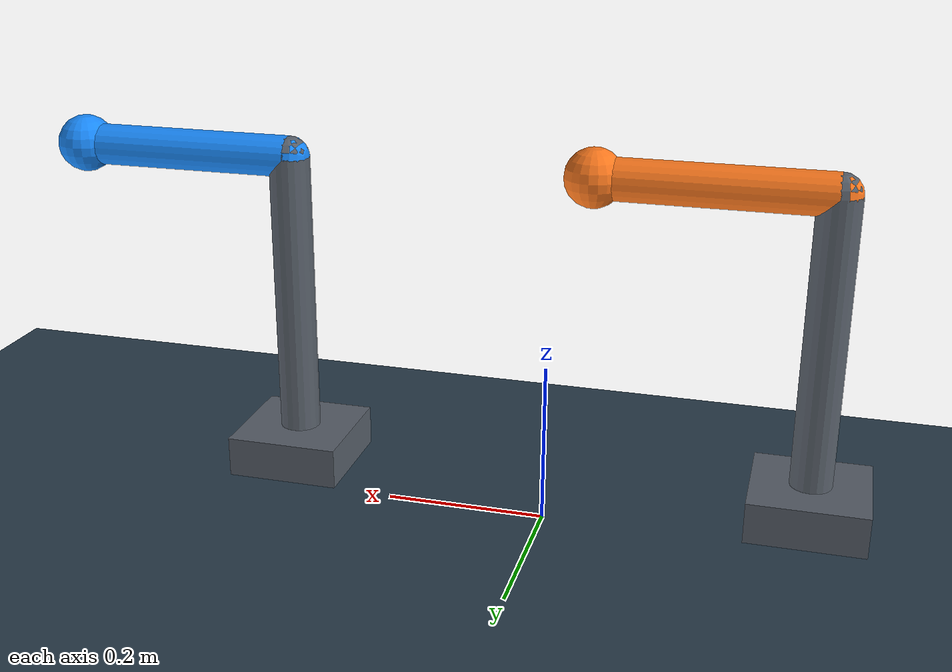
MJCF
<mujoco model="Passive hinge vs powered servo">
  <compiler angle="radian" autolimits="true"/>
  <option timestep="0.002" gravity="0 0 -9.81" integrator="implicitfast"/>

  <visual>
    <headlight ambient="0.35 0.35 0.35" diffuse="0.8 0.8 0.8"/>
    <global azimuth="145" elevation="-18"/>
  </visual>

  <asset>
    <texture name="grid" type="2d" builtin="checker"
             rgb1="0.12 0.18 0.23" rgb2="0.20 0.29 0.36"
             width="512" height="512"/>
    <material name="floor" texture="grid" texrepeat="4 4" reflectance="0.15"/>
    <material name="passive" rgba="1.0 0.48 0.12 1"/>
    <material name="powered" rgba="0.10 0.55 1.0 1"/>
    <material name="fixture" rgba="0.35 0.38 0.42 1"/>
  </asset>

  <default>
    <joint type="hinge" axis="0 1 0" limited="true"
           range="-2.094395 2.094395" damping="0.04" armature="0.0001"/>
    <geom condim="3" friction="0.8 0.02 0.001"/>
  </default>

  <worldbody>
    <light pos="0 -1 2" dir="0 0 -1"/>
    <geom name="floor" type="plane" size="2 2 0.1" material="floor"/>

    <!-- Left: identical geometry, but the elbow is only a passive hinge. -->
    <body name="passive_fixture" pos="-0.32 0 0.04">
      <geom type="box" pos="0 0 0.025" size="0.07 0.07 0.025"
            material="fixture" mass="0.4"/>
      <geom type="capsule" fromto="0 0 0.05 0 0 0.40" size="0.025"
            material="fixture" mass="0.25"/>
      <body name="passive_forearm" pos="0 0 0.40">
        <joint name="passive_elbow"/>
        <geom type="capsule" fromto="0 0 0 0.27 0 0" size="0.025"
              material="passive" mass="0.16"/>
        <geom type="sphere" pos="0.27 0 0" size="0.035"
              material="passive" mass="0.04"/>
      </body>
    </body>

    <!-- Right: same body and hinge, plus a position-servo actuator below. -->
    <body name="powered_fixture" pos="0.32 0 0.04">
      <geom type="box" pos="0 0 0.025" size="0.07 0.07 0.025"
            material="fixture" mass="0.4"/>
      <geom type="capsule" fromto="0 0 0.05 0 0 0.40" size="0.025"
            material="fixture" mass="0.25"/>
      <body name="powered_forearm" pos="0 0 0.40">
        <joint name="powered_elbow"/>
        <geom type="capsule" fromto="0 0 0 0.27 0 0" size="0.025"
              material="powered" mass="0.16"/>
        <geom type="sphere" pos="0.27 0 0" size="0.035"
              material="powered" mass="0.04"/>
      </body>
    </body>
  </worldbody>

  <actuator>
    <!-- ctrl=0 rad: hold the blue forearm horizontally. -->
    <position name="powered_servo" joint="powered_elbow"
              kp="8" kv="0.25"
              ctrllimited="true" ctrlrange="-2.094395 2.094395"
              forcelimited="true" forcerange="-1.0 1.0"/>
  </actuator>
</mujoco>
